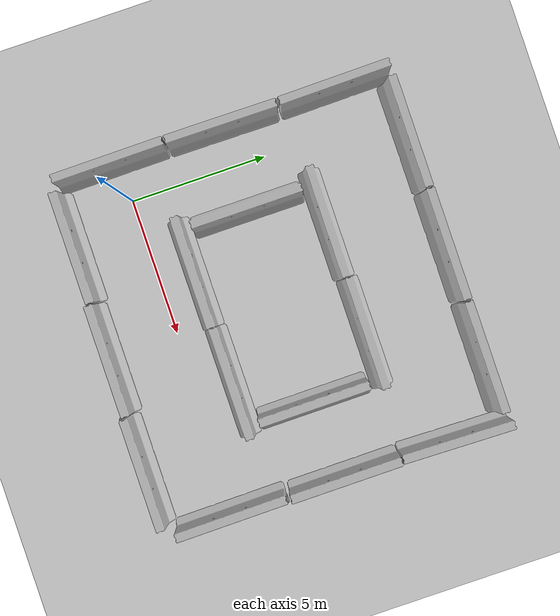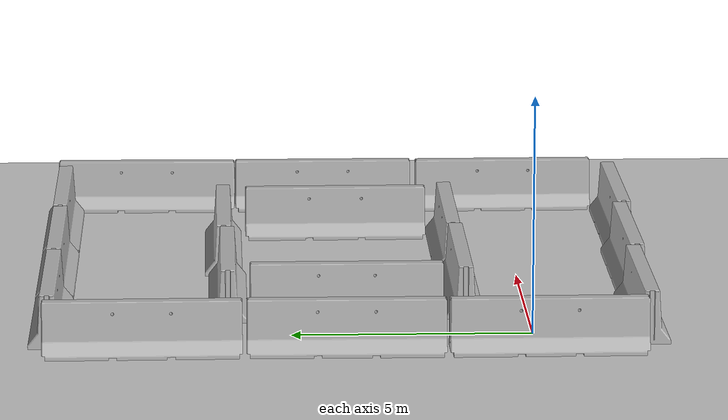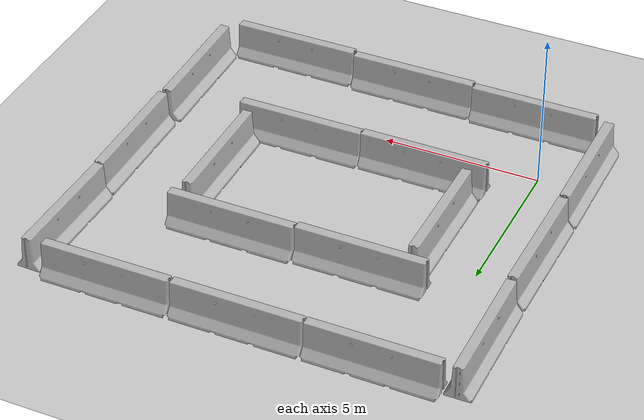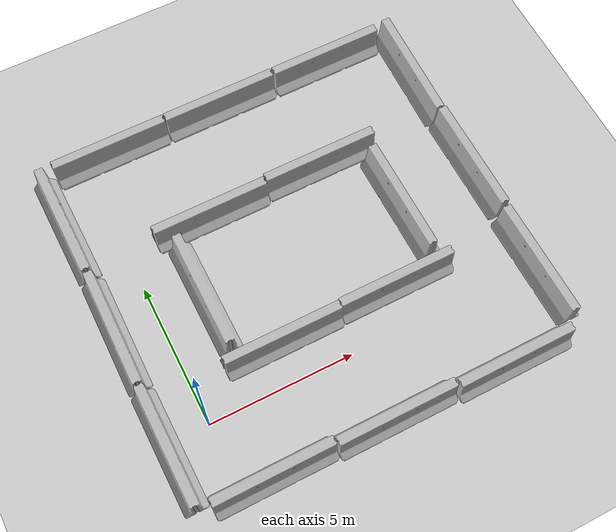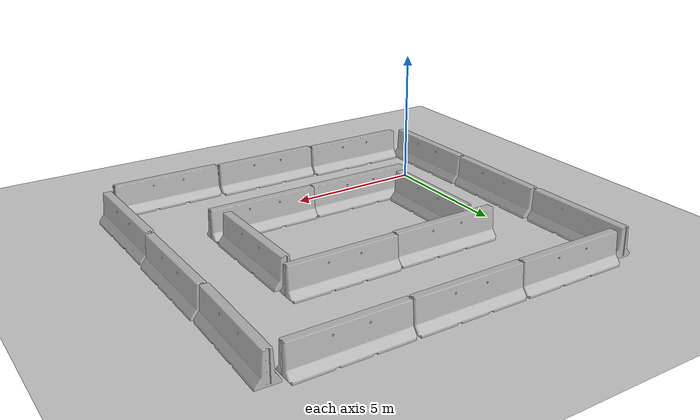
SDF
<sdf version="1.6">
 <world name="default">
  <light name="sun" type="directional">
   <pose>0 0 10 0 -0 0</pose>
   <diffuse>0.8 0.8 0.8 1</diffuse>
   <specular>0.1 0.1 0.1 1</specular>
   <attenuation>
    <range>1000</range>
    <constant>0.9</constant>
    <linear>0.01</linear>
    <quadratic>0.001</quadratic>
   </attenuation>
   <direction>-0.5 0.5 -1</direction>
  </light>
  <model name="ground_plane">
   <static>1</static>
   <link name="link">
    <collision name="collision">
     <geometry><plane><normal>0 0 1</normal><size>100 100</size></plane></geometry>
     <surface><friction><ode><mu>100</mu><mu2>50</mu2></ode></friction></surface>
    </collision>
    <visual name="visual">
     <cast_shadows>0</cast_shadows>
     <geometry><plane><normal>0 0 1</normal><size>100 100</size></plane></geometry>
     <material>
      <script><uri>file://media/materials/scripts/gazebo.material</uri><name>Gazebo/Grey</name></script>
     </material>
    </visual>
   </link>
  </model>
  <gravity>0 0 -9.8</gravity>
  <magnetic_field>6e-06 2.3e-05 -4.2e-05</magnetic_field>
  <atmosphere type="adiabatic"/>
  <physics name="default_physics" default="0" type="ode">
   <max_step_size>0.001</max_step_size>
   <real_time_factor>1</real_time_factor>
   <real_time_update_rate>1000</real_time_update_rate>
  </physics>
  <scene><ambient>0.4 0.4 0.4 1</ambient><background>0.7 0.7 0.7 1</background><shadows>1</shadows></scene>
  <spherical_coordinates>
   <surface_model>EARTH_WGS84</surface_model>
   <latitude_deg>0</latitude_deg>
   <longitude_deg>0</longitude_deg>
   <elevation>0</elevation>
   <heading_deg>0</heading_deg>
  </spherical_coordinates>
  <model name="jersey_barrier">
   <static>1</static>
   <link name="link">
    <visual name="visual">
     <geometry>
      <mesh><uri>model://jersey_barrier/meshes/jersey_barrier.dae</uri><scale>1 1 1</scale></mesh>
     </geometry>
    </visual>
    <collision name="upright">
     <pose>0 0 0.5715 0 -0 0</pose>
     <geometry><box><size>4.06542 0.3063 1.143</size></box></geometry>
    </collision>
    <collision name="base">
     <pose>0 0 0.032258 0 -0 0</pose>
     <geometry><box><size>4.06542 0.8107 0.064516</size></box></geometry>
    </collision>
    <collision name="base2">
     <pose>0 0 0.1 0 -0 0</pose>
     <geometry><box><size>4.06542 0.65 0.1</size></box></geometry>
    </collision>
    <collision name="base3">
     <pose>0 0 0.2 0 -0 0</pose>
     <geometry><box><size>4.06542 0.5 0.1</size></box></geometry>
    </collision>
    <collision name="left-angle">
     <pose>0 -0.224 0.2401 0.9 -0 0</pose>
     <geometry><box><size>4.06542 0.5 0.064516</size></box></geometry>
    </collision>
    <collision name="right-angle">
     <pose>0 0.224 0.2401 -0.9 0 0</pose>
     <geometry><box><size>4.06542 0.5 0.064516</size></box></geometry>
    </collision>
   </link>
   <pose>7.10721 6.37711 0 0 -0 0</pose>
  </model>
  <model name="jersey_barrier_0">
   <static>1</static>
   <link name="link">
    <visual name="visual">
     <geometry>
      <mesh><uri>model://jersey_barrier/meshes/jersey_barrier.dae</uri><scale>1 1 1</scale></mesh>
     </geometry>
    </visual>
    <collision name="upright">
     <pose>0 0 0.5715 0 -0 0</pose>
     <geometry><box><size>4.06542 0.3063 1.143</size></box></geometry>
    </collision>
    <collision name="base">
     <pose>0 0 0.032258 0 -0 0</pose>
     <geometry><box><size>4.06542 0.8107 0.064516</size></box></geometry>
    </collision>
    <collision name="base2">
     <pose>0 0 0.1 0 -0 0</pose>
     <geometry><box><size>4.06542 0.65 0.1</size></box></geometry>
    </collision>
    <collision name="base3">
     <pose>0 0 0.2 0 -0 0</pose>
     <geometry><box><size>4.06542 0.5 0.1</size></box></geometry>
    </collision>
    <collision name="left-angle">
     <pose>0 -0.224 0.2401 0.9 -0 0</pose>
     <geometry><box><size>4.06542 0.5 0.064516</size></box></geometry>
    </collision>
    <collision name="right-angle">
     <pose>0 0.224 0.2401 -0.9 0 0</pose>
     <geometry><box><size>4.06542 0.5 0.064516</size></box></geometry>
    </collision>
   </link>
   <pose>9.20855 10.0014 0 0 -0 0</pose>
  </model>
  <model name="jersey_barrier_1">
   <static>1</static>
   <link name="link">
    <visual name="visual">
     <geometry>
      <mesh><uri>model://jersey_barrier/meshes/jersey_barrier.dae</uri><scale>1 1 1</scale></mesh>
     </geometry>
    </visual>
    <collision name="upright">
     <pose>0 0 0.5715 0 -0 0</pose>
     <geometry><box><size>4.06542 0.3063 1.143</size></box></geometry>
    </collision>
    <collision name="base">
     <pose>0 0 0.032258 0 -0 0</pose>
     <geometry><box><size>4.06542 0.8107 0.064516</size></box></geometry>
    </collision>
    <collision name="base2">
     <pose>0 0 0.1 0 -0 0</pose>
     <geometry><box><size>4.06542 0.65 0.1</size></box></geometry>
    </collision>
    <collision name="base3">
     <pose>0 0 0.2 0 -0 0</pose>
     <geometry><box><size>4.06542 0.5 0.1</size></box></geometry>
    </collision>
    <collision name="left-angle">
     <pose>0 -0.224 0.2401 0.9 -0 0</pose>
     <geometry><box><size>4.06542 0.5 0.064516</size></box></geometry>
    </collision>
    <collision name="right-angle">
     <pose>0 0.224 0.2401 -0.9 0 0</pose>
     <geometry><box><size>4.06542 0.5 0.064516</size></box></geometry>
    </collision>
   </link>
   <pose>9.26353 -2.56264 0 0 -0 0</pose>
  </model>
  <model name="jersey_barrier_2">
   <static>1</static>
   <link name="link">
    <visual name="visual">
     <geometry>
      <mesh><uri>model://jersey_barrier/meshes/jersey_barrier.dae</uri><scale>1 1 1</scale></mesh>
     </geometry>
    </visual>
    <collision name="upright">
     <pose>0 0 0.5715 0 -0 0</pose>
     <geometry><box><size>4.06542 0.3063 1.143</size></box></geometry>
    </collision>
    <collision name="base">
     <pose>0 0 0.032258 0 -0 0</pose>
     <geometry><box><size>4.06542 0.8107 0.064516</size></box></geometry>
    </collision>
    <collision name="base2">
     <pose>0 0 0.1 0 -0 0</pose>
     <geometry><box><size>4.06542 0.65 0.1</size></box></geometry>
    </collision>
    <collision name="base3">
     <pose>0 0 0.2 0 -0 0</pose>
     <geometry><box><size>4.06542 0.5 0.1</size></box></geometry>
    </collision>
    <collision name="left-angle">
     <pose>0 -0.224 0.2401 0.9 -0 0</pose>
     <geometry><box><size>4.06542 0.5 0.064516</size></box></geometry>
    </collision>
    <collision name="right-angle">
     <pose>0 0.224 0.2401 -0.9 0 0</pose>
     <geometry><box><size>4.06542 0.5 0.064516</size></box></geometry>
    </collision>
   </link>
   <pose>7.2594 1.36402 0 0 -0 0</pose>
  </model>
  <model name="jersey_barrier_3">
   <static>1</static>
   <link name="link">
    <visual name="visual">
     <geometry>
      <mesh><uri>model://jersey_barrier/meshes/jersey_barrier.dae</uri><scale>1 1 1</scale></mesh>
     </geometry>
    </visual>
    <collision name="upright">
     <pose>0 0 0.5715 0 -0 0</pose>
     <geometry><box><size>4.06542 0.3063 1.143</size></box></geometry>
    </collision>
    <collision name="base">
     <pose>0 0 0.032258 0 -0 0</pose>
     <geometry><box><size>4.06542 0.8107 0.064516</size></box></geometry>
    </collision>
    <collision name="base2">
     <pose>0 0 0.1 0 -0 0</pose>
     <geometry><box><size>4.06542 0.65 0.1</size></box></geometry>
    </collision>
    <collision name="base3">
     <pose>0 0 0.2 0 -0 0</pose>
     <geometry><box><size>4.06542 0.5 0.1</size></box></geometry>
    </collision>
    <collision name="left-angle">
     <pose>0 -0.224 0.2401 0.9 -0 0</pose>
     <geometry><box><size>4.06542 0.5 0.064516</size></box></geometry>
    </collision>
    <collision name="right-angle">
     <pose>0 0.224 0.2401 -0.9 0 0</pose>
     <geometry><box><size>4.06542 0.5 0.064516</size></box></geometry>
    </collision>
   </link>
   <pose>5.14631 -2.45687 0 0 -0 0</pose>
  </model>
  <model name="jersey_barrier_4">
   <static>1</static>
   <link name="link">
    <visual name="visual">
     <geometry>
      <mesh><uri>model://jersey_barrier/meshes/jersey_barrier.dae</uri><scale>1 1 1</scale></mesh>
     </geometry>
    </visual>
    <collision name="upright">
     <pose>0 0 0.5715 0 -0 0</pose>
     <geometry><box><size>4.06542 0.3063 1.143</size></box></geometry>
    </collision>
    <collision name="base">
     <pose>0 0 0.032258 0 -0 0</pose>
     <geometry><box><size>4.06542 0.8107 0.064516</size></box></geometry>
    </collision>
    <collision name="base2">
     <pose>0 0 0.1 0 -0 0</pose>
     <geometry><box><size>4.06542 0.65 0.1</size></box></geometry>
    </collision>
    <collision name="base3">
     <pose>0 0 0.2 0 -0 0</pose>
     <geometry><box><size>4.06542 0.5 0.1</size></box></geometry>
    </collision>
    <collision name="left-angle">
     <pose>0 -0.224 0.2401 0.9 -0 0</pose>
     <geometry><box><size>4.06542 0.5 0.064516</size></box></geometry>
    </collision>
    <collision name="right-angle">
     <pose>0 0.224 0.2401 -0.9 0 0</pose>
     <geometry><box><size>4.06542 0.5 0.064516</size></box></geometry>
    </collision>
   </link>
   <pose>5.09072 9.99643 0 0 -0 0</pose>
  </model>
  <model name="jersey_barrier_5">
   <static>1</static>
   <link name="link">
    <visual name="visual">
     <geometry>
      <mesh><uri>model://jersey_barrier/meshes/jersey_barrier.dae</uri><scale>1 1 1</scale></mesh>
     </geometry>
    </visual>
    <collision name="upright">
     <pose>0 0 0.5715 0 -0 0</pose>
     <geometry><box><size>4.06542 0.3063 1.143</size></box></geometry>
    </collision>
    <collision name="base">
     <pose>0 0 0.032258 0 -0 0</pose>
     <geometry><box><size>4.06542 0.8107 0.064516</size></box></geometry>
    </collision>
    <collision name="base2">
     <pose>0 0 0.1 0 -0 0</pose>
     <geometry><box><size>4.06542 0.65 0.1</size></box></geometry>
    </collision>
    <collision name="base3">
     <pose>0 0 0.2 0 -0 0</pose>
     <geometry><box><size>4.06542 0.5 0.1</size></box></geometry>
    </collision>
    <collision name="left-angle">
     <pose>0 -0.224 0.2401 0.9 -0 0</pose>
     <geometry><box><size>4.06542 0.5 0.064516</size></box></geometry>
    </collision>
    <collision name="right-angle">
     <pose>0 0.224 0.2401 -0.9 0 0</pose>
     <geometry><box><size>4.06542 0.5 0.064516</size></box></geometry>
    </collision>
   </link>
   <pose>1.05583 -2.36249 0 0 -0 0</pose>
  </model>
  <model name="jersey_barrier_6">
   <static>1</static>
   <link name="link">
    <visual name="visual">
     <geometry>
      <mesh><uri>model://jersey_barrier/meshes/jersey_barrier.dae</uri><scale>1 1 1</scale></mesh>
     </geometry>
    </visual>
    <collision name="upright">
     <pose>0 0 0.5715 0 -0 0</pose>
     <geometry><box><size>4.06542 0.3063 1.143</size></box></geometry>
    </collision>
    <collision name="base">
     <pose>0 0 0.032258 0 -0 0</pose>
     <geometry><box><size>4.06542 0.8107 0.064516</size></box></geometry>
    </collision>
    <collision name="base2">
     <pose>0 0 0.1 0 -0 0</pose>
     <geometry><box><size>4.06542 0.65 0.1</size></box></geometry>
    </collision>
    <collision name="base3">
     <pose>0 0 0.2 0 -0 0</pose>
     <geometry><box><size>4.06542 0.5 0.1</size></box></geometry>
    </collision>
    <collision name="left-angle">
     <pose>0 -0.224 0.2401 0.9 -0 0</pose>
     <geometry><box><size>4.06542 0.5 0.064516</size></box></geometry>
    </collision>
    <collision name="right-angle">
     <pose>0 0.224 0.2401 -0.9 0 0</pose>
     <geometry><box><size>4.06542 0.5 0.064516</size></box></geometry>
    </collision>
   </link>
   <pose>0.991738 9.98976 0 0 -0 0</pose>
  </model>
  <model name="jersey_barrier_7">
   <static>1</static>
   <link name="link">
    <visual name="visual">
     <geometry>
      <mesh><uri>model://jersey_barrier/meshes/jersey_barrier.dae</uri><scale>1 1 1</scale></mesh>
     </geometry>
    </visual>
    <collision name="upright">
     <pose>0 0 0.5715 0 -0 0</pose>
     <geometry><box><size>4.06542 0.3063 1.143</size></box></geometry>
    </collision>
    <collision name="base">
     <pose>0 0 0.032258 0 -0 0</pose>
     <geometry><box><size>4.06542 0.8107 0.064516</size></box></geometry>
    </collision>
    <collision name="base2">
     <pose>0 0 0.1 0 -0 0</pose>
     <geometry><box><size>4.06542 0.65 0.1</size></box></geometry>
    </collision>
    <collision name="base3">
     <pose>0 0 0.2 0 -0 0</pose>
     <geometry><box><size>4.06542 0.5 0.1</size></box></geometry>
    </collision>
    <collision name="left-angle">
     <pose>0 -0.224 0.2401 0.9 -0 0</pose>
     <geometry><box><size>4.06542 0.5 0.064516</size></box></geometry>
    </collision>
    <collision name="right-angle">
     <pose>0 0.224 0.2401 -0.9 0 0</pose>
     <geometry><box><size>4.06542 0.5 0.064516</size></box></geometry>
    </collision>
   </link>
   <pose>3.19856 1.32134 0 0 -0 0</pose>
  </model>
  <model name="jersey_barrier_8">
   <static>1</static>
   <link name="link">
    <visual name="visual">
     <geometry>
      <mesh><uri>model://jersey_barrier/meshes/jersey_barrier.dae</uri><scale>1 1 1</scale></mesh>
     </geometry>
    </visual>
    <collision name="upright">
     <pose>0 0 0.5715 0 -0 0</pose>
     <geometry><box><size>4.06542 0.3063 1.143</size></box></geometry>
    </collision>
    <collision name="base">
     <pose>0 0 0.032258 0 -0 0</pose>
     <geometry><box><size>4.06542 0.8107 0.064516</size></box></geometry>
    </collision>
    <collision name="base2">
     <pose>0 0 0.1 0 -0 0</pose>
     <geometry><box><size>4.06542 0.65 0.1</size></box></geometry>
    </collision>
    <collision name="base3">
     <pose>0 0 0.2 0 -0 0</pose>
     <geometry><box><size>4.06542 0.5 0.1</size></box></geometry>
    </collision>
    <collision name="left-angle">
     <pose>0 -0.224 0.2401 0.9 -0 0</pose>
     <geometry><box><size>4.06542 0.5 0.064516</size></box></geometry>
    </collision>
    <collision name="right-angle">
     <pose>0 0.224 0.2401 -0.9 0 0</pose>
     <geometry><box><size>4.06542 0.5 0.064516</size></box></geometry>
    </collision>
   </link>
   <pose>11.6778 4.05214 0 0 0 -1.56489</pose>
  </model>
  <model name="jersey_barrier_9">
   <static>1</static>
   <link name="link">
    <visual name="visual">
     <geometry>
      <mesh><uri>model://jersey_barrier/meshes/jersey_barrier.dae</uri><scale>1 1 1</scale></mesh>
     </geometry>
    </visual>
    <collision name="upright">
     <pose>0 0 0.5715 0 -0 0</pose>
     <geometry><box><size>4.06542 0.3063 1.143</size></box></geometry>
    </collision>
    <collision name="base">
     <pose>0 0 0.032258 0 -0 0</pose>
     <geometry><box><size>4.06542 0.8107 0.064516</size></box></geometry>
    </collision>
    <collision name="base2">
     <pose>0 0 0.1 0 -0 0</pose>
     <geometry><box><size>4.06542 0.65 0.1</size></box></geometry>
    </collision>
    <collision name="base3">
     <pose>0 0 0.2 0 -0 0</pose>
     <geometry><box><size>4.06542 0.5 0.1</size></box></geometry>
    </collision>
    <collision name="left-angle">
     <pose>0 -0.224 0.2401 0.9 -0 0</pose>
     <geometry><box><size>4.06542 0.5 0.064516</size></box></geometry>
    </collision>
    <collision name="right-angle">
     <pose>0 0.224 0.2401 -0.9 0 0</pose>
     <geometry><box><size>4.06542 0.5 0.064516</size></box></geometry>
    </collision>
   </link>
   <pose>-1.4569 8.0523 0 0 0 -1.5571</pose>
  </model>
  <model name="jersey_barrier_10">
   <static>1</static>
   <link name="link">
    <visual name="visual">
     <geometry>
      <mesh><uri>model://jersey_barrier/meshes/jersey_barrier.dae</uri><scale>1 1 1</scale></mesh>
     </geometry>
    </visual>
    <collision name="upright">
     <pose>0 0 0.5715 0 -0 0</pose>
     <geometry><box><size>4.06542 0.3063 1.143</size></box></geometry>
    </collision>
    <collision name="base">
     <pose>0 0 0.032258 0 -0 0</pose>
     <geometry><box><size>4.06542 0.8107 0.064516</size></box></geometry>
    </collision>
    <collision name="base2">
     <pose>0 0 0.1 0 -0 0</pose>
     <geometry><box><size>4.06542 0.65 0.1</size></box></geometry>
    </collision>
    <collision name="base3">
     <pose>0 0 0.2 0 -0 0</pose>
     <geometry><box><size>4.06542 0.5 0.1</size></box></geometry>
    </collision>
    <collision name="left-angle">
     <pose>0 -0.224 0.2401 0.9 -0 0</pose>
     <geometry><box><size>4.06542 0.5 0.064516</size></box></geometry>
    </collision>
    <collision name="right-angle">
     <pose>0 0.224 0.2401 -0.9 0 0</pose>
     <geometry><box><size>4.06542 0.5 0.064516</size></box></geometry>
    </collision>
   </link>
   <pose>3.02372 6.29986 0 0 -0 0</pose>
  </model>
  <model name="jersey_barrier_11">
   <static>1</static>
   <link name="link">
    <visual name="visual">
     <geometry>
      <mesh><uri>model://jersey_barrier/meshes/jersey_barrier.dae</uri><scale>1 1 1</scale></mesh>
     </geometry>
    </visual>
    <collision name="upright">
     <pose>0 0 0.5715 0 -0 0</pose>
     <geometry><box><size>4.06542 0.3063 1.143</size></box></geometry>
    </collision>
    <collision name="base">
     <pose>0 0 0.032258 0 -0 0</pose>
     <geometry><box><size>4.06542 0.8107 0.064516</size></box></geometry>
    </collision>
    <collision name="base2">
     <pose>0 0 0.1 0 -0 0</pose>
     <geometry><box><size>4.06542 0.65 0.1</size></box></geometry>
    </collision>
    <collision name="base3">
     <pose>0 0 0.2 0 -0 0</pose>
     <geometry><box><size>4.06542 0.5 0.1</size></box></geometry>
    </collision>
    <collision name="left-angle">
     <pose>0 -0.224 0.2401 0.9 -0 0</pose>
     <geometry><box><size>4.06542 0.5 0.064516</size></box></geometry>
    </collision>
    <collision name="right-angle">
     <pose>0 0.224 0.2401 -0.9 0 0</pose>
     <geometry><box><size>4.06542 0.5 0.064516</size></box></geometry>
    </collision>
   </link>
   <pose>1.62455 3.80285 0 0 0 -1.56771</pose>
  </model>
  <model name="jersey_barrier_12">
   <static>1</static>
   <link name="link">
    <visual name="visual">
     <geometry>
      <mesh><uri>model://jersey_barrier/meshes/jersey_barrier.dae</uri><scale>1 1 1</scale></mesh>
     </geometry>
    </visual>
    <collision name="upright">
     <pose>0 0 0.5715 0 -0 0</pose>
     <geometry><box><size>4.06542 0.3063 1.143</size></box></geometry>
    </collision>
    <collision name="base">
     <pose>0 0 0.032258 0 -0 0</pose>
     <geometry><box><size>4.06542 0.8107 0.064516</size></box></geometry>
    </collision>
    <collision name="base2">
     <pose>0 0 0.1 0 -0 0</pose>
     <geometry><box><size>4.06542 0.65 0.1</size></box></geometry>
    </collision>
    <collision name="base3">
     <pose>0 0 0.2 0 -0 0</pose>
     <geometry><box><size>4.06542 0.5 0.1</size></box></geometry>
    </collision>
    <collision name="left-angle">
     <pose>0 -0.224 0.2401 0.9 -0 0</pose>
     <geometry><box><size>4.06542 0.5 0.064516</size></box></geometry>
    </collision>
    <collision name="right-angle">
     <pose>0 0.224 0.2401 -0.9 0 0</pose>
     <geometry><box><size>4.06542 0.5 0.064516</size></box></geometry>
    </collision>
   </link>
   <pose>-1.41819 -0.228424 0 0 -0 1.57954</pose>
  </model>
  <model name="jersey_barrier_13">
   <static>1</static>
   <link name="link">
    <visual name="visual">
     <geometry>
      <mesh><uri>model://jersey_barrier/meshes/jersey_barrier.dae</uri><scale>1 1 1</scale></mesh>
     </geometry>
    </visual>
    <collision name="upright">
     <pose>0 0 0.5715 0 -0 0</pose>
     <geometry><box><size>4.06542 0.3063 1.143</size></box></geometry>
    </collision>
    <collision name="base">
     <pose>0 0 0.032258 0 -0 0</pose>
     <geometry><box><size>4.06542 0.8107 0.064516</size></box></geometry>
    </collision>
    <collision name="base2">
     <pose>0 0 0.1 0 -0 0</pose>
     <geometry><box><size>4.06542 0.65 0.1</size></box></geometry>
    </collision>
    <collision name="base3">
     <pose>0 0 0.2 0 -0 0</pose>
     <geometry><box><size>4.06542 0.5 0.1</size></box></geometry>
    </collision>
    <collision name="left-angle">
     <pose>0 -0.224 0.2401 0.9 -0 0</pose>
     <geometry><box><size>4.06542 0.5 0.064516</size></box></geometry>
    </collision>
    <collision name="right-angle">
     <pose>0 0.224 0.2401 -0.9 0 0</pose>
     <geometry><box><size>4.06542 0.5 0.064516</size></box></geometry>
    </collision>
   </link>
   <pose>-1.42502 3.89824 0 0 -0 1.56665</pose>
  </model>
  <model name="jersey_barrier_14">
   <static>1</static>
   <link name="link">
    <visual name="visual">
     <geometry>
      <mesh><uri>model://jersey_barrier/meshes/jersey_barrier.dae</uri><scale>1 1 1</scale></mesh>
     </geometry>
    </visual>
    <collision name="upright">
     <pose>0 0 0.5715 0 -0 0</pose>
     <geometry><box><size>4.06542 0.3063 1.143</size></box></geometry>
    </collision>
    <collision name="base">
     <pose>0 0 0.032258 0 -0 0</pose>
     <geometry><box><size>4.06542 0.8107 0.064516</size></box></geometry>
    </collision>
    <collision name="base2">
     <pose>0 0 0.1 0 -0 0</pose>
     <geometry><box><size>4.06542 0.65 0.1</size></box></geometry>
    </collision>
    <collision name="base3">
     <pose>0 0 0.2 0 -0 0</pose>
     <geometry><box><size>4.06542 0.5 0.1</size></box></geometry>
    </collision>
    <collision name="left-angle">
     <pose>0 -0.224 0.2401 0.9 -0 0</pose>
     <geometry><box><size>4.06542 0.5 0.064516</size></box></geometry>
    </collision>
    <collision name="right-angle">
     <pose>0 0.224 0.2401 -0.9 0 0</pose>
     <geometry><box><size>4.06542 0.5 0.064516</size></box></geometry>
    </collision>
   </link>
   <pose>8.84254 3.84035 0 0 -0 1.5776</pose>
  </model>
  <model name="jersey_barrier_15">
   <static>1</static>
   <link name="link">
    <visual name="visual">
     <geometry>
      <mesh><uri>model://jersey_barrier/meshes/jersey_barrier.dae</uri><scale>1 1 1</scale></mesh>
     </geometry>
    </visual>
    <collision name="upright">
     <pose>0 0 0.5715 0 -0 0</pose>
     <geometry><box><size>4.06542 0.3063 1.143</size></box></geometry>
    </collision>
    <collision name="base">
     <pose>0 0 0.032258 0 -0 0</pose>
     <geometry><box><size>4.06542 0.8107 0.064516</size></box></geometry>
    </collision>
    <collision name="base2">
     <pose>0 0 0.1 0 -0 0</pose>
     <geometry><box><size>4.06542 0.65 0.1</size></box></geometry>
    </collision>
    <collision name="base3">
     <pose>0 0 0.2 0 -0 0</pose>
     <geometry><box><size>4.06542 0.5 0.1</size></box></geometry>
    </collision>
    <collision name="left-angle">
     <pose>0 -0.224 0.2401 0.9 -0 0</pose>
     <geometry><box><size>4.06542 0.5 0.064516</size></box></geometry>
    </collision>
    <collision name="right-angle">
     <pose>0 0.224 0.2401 -0.9 0 0</pose>
     <geometry><box><size>4.06542 0.5 0.064516</size></box></geometry>
    </collision>
   </link>
   <pose>11.658 -0.142779 0 0 -0 1.58225</pose>
  </model>
  <model name="jersey_barrier_16">
   <static>1</static>
   <link name="link">
    <visual name="visual">
     <geometry>
      <mesh><uri>model://jersey_barrier/meshes/jersey_barrier.dae</uri><scale>1 1 1</scale></mesh>
     </geometry>
    </visual>
    <collision name="upright">
     <pose>0 0 0.5715 0 -0 0</pose>
     <geometry><box><size>4.06542 0.3063 1.143</size></box></geometry>
    </collision>
    <collision name="base">
     <pose>0 0 0.032258 0 -0 0</pose>
     <geometry><box><size>4.06542 0.8107 0.064516</size></box></geometry>
    </collision>
    <collision name="base2">
     <pose>0 0 0.1 0 -0 0</pose>
     <geometry><box><size>4.06542 0.65 0.1</size></box></geometry>
    </collision>
    <collision name="base3">
     <pose>0 0 0.2 0 -0 0</pose>
     <geometry><box><size>4.06542 0.5 0.1</size></box></geometry>
    </collision>
    <collision name="left-angle">
     <pose>0 -0.224 0.2401 0.9 -0 0</pose>
     <geometry><box><size>4.06542 0.5 0.064516</size></box></geometry>
    </collision>
    <collision name="right-angle">
     <pose>0 0.224 0.2401 -0.9 0 0</pose>
     <geometry><box><size>4.06542 0.5 0.064516</size></box></geometry>
    </collision>
   </link>
   <pose>11.6685 8.13846 0 0 -0 1.5488</pose>
  </model>
 </world>
</sdf>
